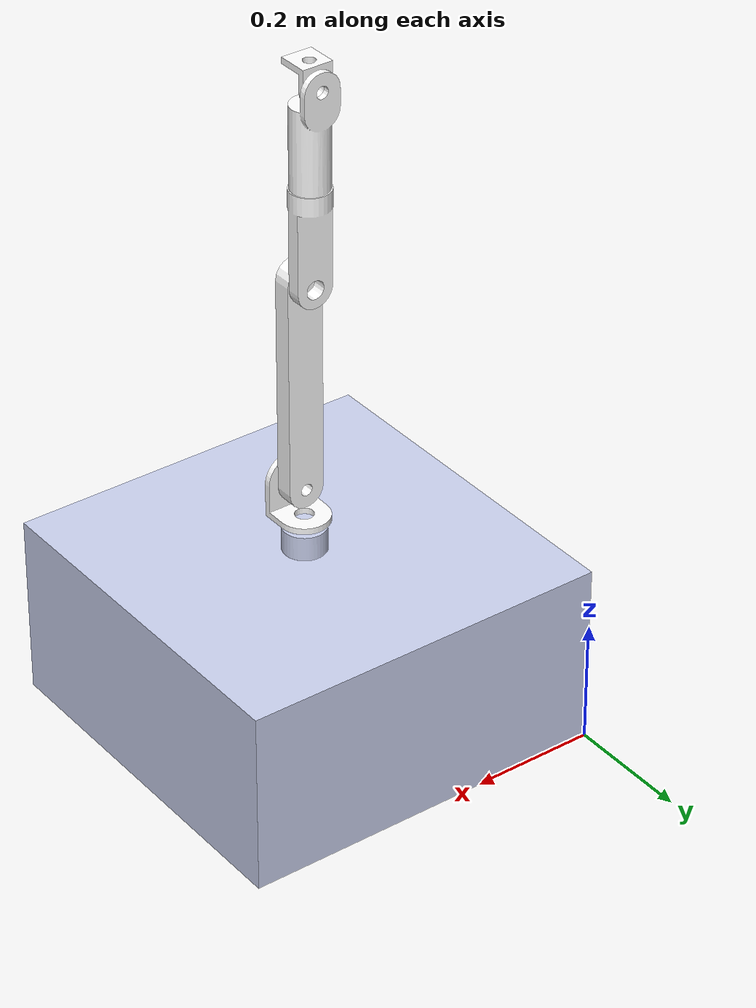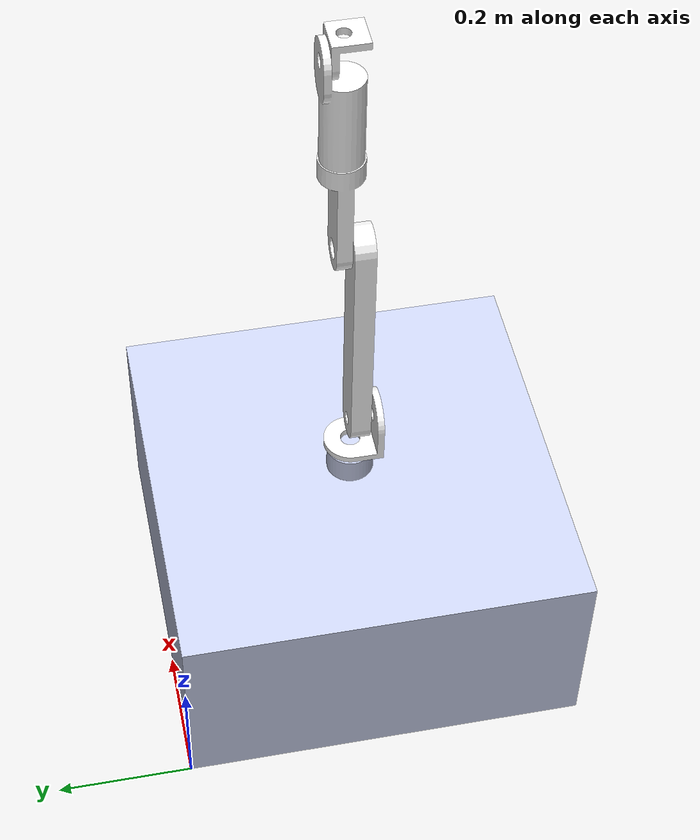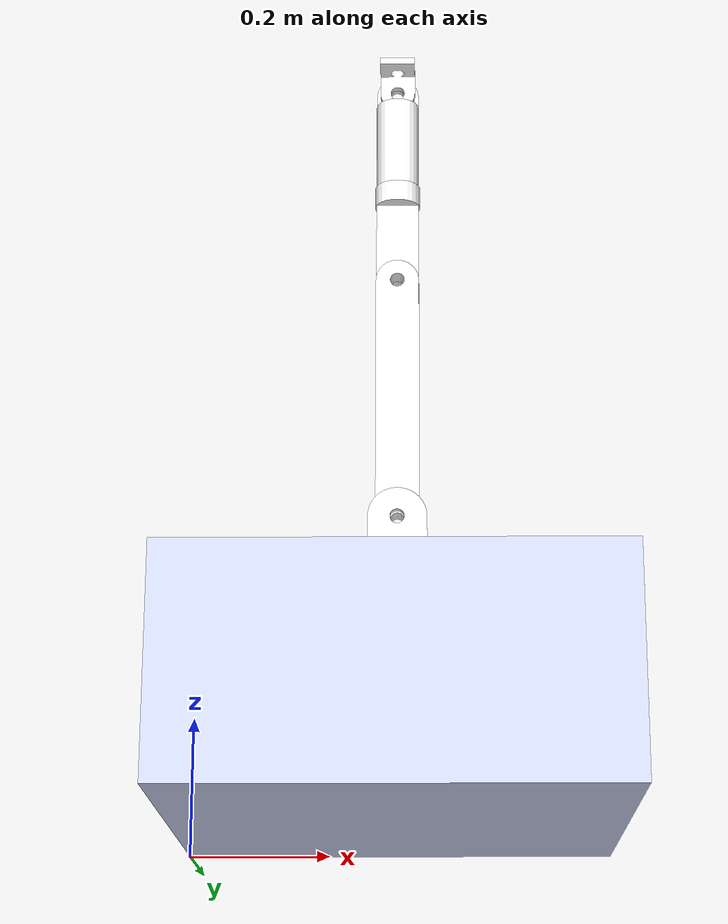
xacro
<?xml version="1.0" encoding="utf-8"?>
<robot xmlns:xacro="http://www.ros.org/wiki/xacro" name="arm">

  <!-- Properties for common parameters -->
  <xacro:property name="joint_effort_limit" value="100" />
  <xacro:property name="joint_velocity_limit" value="100" />
  <xacro:property name="joint_lower_limit" value="-3.14" />
  <xacro:property name="joint_upper_limit" value="3.14" />

  <!-- Base Link -->
  <link name="base_link">
    <inertial>
      <origin xyz="0.3 -0.3 0.150241964992479" rpy="0 0 0" />
      <mass value="108.153938040026" />
      <inertia
        ixx="4.05006766859676"
        ixy="5.96236737040346E-17"
        ixz="-1.98291555702412E-16"
        iyy="4.05006766859676"
        iyz="1.48790520498712E-16"
        izz="6.48009428704952" />
    </inertial>
    <visual>
      <origin xyz="0 0 0" rpy="0 0 0" />
      <geometry>
        <mesh filename="package://arm_description/meshes/base_link.STL" />
      </geometry>
      <material name="">
        <color rgba="0.792156862745098 0.819607843137255 0.933333333333333 1" />
      </material>
    </visual>
    <collision>
      <origin xyz="0 0 0" rpy="0 0 0" />
      <geometry>
        <mesh filename="package://arm_description/meshes/base_link.STL" />
      </geometry>
    </collision>
  </link>

  <!-- Link 1 -->
  <link name="link1">
    <inertial>
      <origin xyz="0.027879900764249 -5.55111512312578E-17 0.0223805358867052" rpy="0 0 0" />
      <mass value="0.10997530633327" />
      <inertia
        ixx="0.000113416478550938"
        ixy="7.68604581237048E-21"
        ixz="-3.77923375022149E-05"
        iyy="0.000140277105028251"
        iyz="-6.74441501657892E-21"
        izz="0.000140702050503476" />
    </inertial>
    <visual>
      <origin xyz="0 0 0" rpy="0 0 0" />
      <geometry>
        <mesh filename="package://arm_description/meshes/link1.STL" />
      </geometry>
      <material name="">
        <color rgba="1 1 1 1" />
      </material>
    </visual>
    <collision>
      <origin xyz="0 0 0" rpy="0 0 0" />
      <geometry>
        <mesh filename="package://arm_description/meshes/link1.STL" />
      </geometry>
    </collision>
  </link>

  <!-- Joint 1 -->
  <joint name="joint1" type="revolute">
    <origin xyz="0.3 -0.3 0.35" rpy="1.5708 -1.5708 0" />
    <parent link="base_link" />
    <child link="link1" />
    <axis xyz="1 0 0" />
    <limit
      lower="${joint_lower_limit}"
      upper="${joint_upper_limit}"
      effort="${joint_effort_limit}"
      velocity="${joint_velocity_limit}" />
  </joint>

  <!-- Link 2 -->
  <link name="link2">
    <inertial>
      <origin xyz="0.175 0.0150000000000001 5.55111512312578E-17" rpy="0 0 0" />
      <mass value="0.695973445725386" />
      <inertia
        ixx="0.000259811944901924"
        ixy="-5.9240876142181E-19"
        ixz="-1.42013607458529E-18"
        iyy="0.00905591464828498"
        iyz="4.68349859133938E-20"
        izz="0.00890049872024186" />
    </inertial>
    <visual>
      <origin xyz="0 0 0" rpy="0 0 0" />
      <geometry>
        <mesh filename="package://arm_description/meshes/link2.STL" />
      </geometry>
      <material name="">
        <color rgba="1 1 1 1" />
      </material>
    </visual>
    <collision>
      <origin xyz="0 0 0" rpy="0 0 0" />
      <geometry>
        <mesh filename="package://arm_description/meshes/link2.STL" />
      </geometry>
    </collision>
  </link>

  <!-- Joint 2 -->
  <joint name="joint2" type="revolute">
    <origin xyz="0.0549999999999999 0 0.0239000000000001" rpy="-1.5707963267949 0 0" />
    <parent link="link1" />
    <child link="link2" />
    <axis xyz="0 1 0" />
    <limit
      lower="${joint_lower_limit}"
      upper="${joint_upper_limit}"
      effort="${joint_effort_limit}"
      velocity="${joint_velocity_limit}" />
  </joint>

  <!-- Link 3 -->
  <link name="link3">
    <inertial>
      <origin xyz="0.011 0.0866621656130951 0" rpy="0 0 0" />
      <mass value="0.282057866614725" />
      <inertia
        ixx="0.00091666723607833"
        ixy="-1.23781996004548E-19"
        ixz="-5.53204332497181E-21"
        iyy="0.000113826214215689"
        iyz="9.52849345211767E-20"
        izz="0.000866955254620232" />
    </inertial>
    <visual>
      <origin xyz="0 0 0" rpy="0 0 0" />
      <geometry>
        <mesh filename="package://arm_description/meshes/link3.STL" />
      </geometry>
      <material name="">
        <color rgba="1 1 1 1" />
      </material>
    </visual>
    <collision>
      <origin xyz="0 0 0" rpy="0 0 0" />
      <geometry>
        <mesh filename="package://arm_description/meshes/link3.STL" />
      </geometry>
    </collision>
  </link>

  <!-- Joint 3 -->
  <joint name="joint3" type="revolute">
    <origin xyz="0.35 0.033 0" rpy="3.1416 0 1.5708" />
    <parent link="link2" />
    <child link="link3" />
    <axis xyz="1 0 0" />
    <limit
      lower="${joint_lower_limit}"
      upper="${joint_upper_limit}"
      effort="${joint_effort_limit}"
      velocity="${joint_velocity_limit}" />
  </joint>

  <!-- Link 4 -->
  <link name="link4">
    <inertial>
      <origin xyz="0.0722067358006824 3.09175477997137E-08 0.00212519424079688" rpy="0 0 0" />
      <mass value="0.401387078802621" />
      <inertia
        ixx="0.000196053620635152"
        ixy="-3.94998604417473E-10"
        ixz="-6.65598685922249E-05"
        iyy="0.000861171635012986"
        iyz="-4.45831496816359E-10"
        izz="0.000851845195995295" />
    </inertial>
    <visual>
      <origin xyz="0 0 0" rpy="0 0 0" />
      <geometry>
        <mesh filename="package://arm_description/meshes/link4.STL" />
      </geometry>
      <material name="">
        <color rgba="1 1 1 1" />
      </material>
    </visual>
    <collision>
      <origin xyz="0 0 0" rpy="0 0 0" />
      <geometry>
        <mesh filename="package://arm_description/meshes/link4.STL" />
      </geometry>
    </collision>
  </link>

  <!-- Joint 4 -->
  <joint name="joint4" type="revolute">
    <origin xyz="0.011 0.159 0" rpy="1.5707963267949 0 1.5707963267949" />
    <parent link="link3" />
    <child link="link4" />
    <axis xyz="-1 0 0" />
    <limit
      lower="${joint_lower_limit}"
      upper="${joint_upper_limit}"
      effort="${joint_effort_limit}"
      velocity="${joint_velocity_limit}" />
  </joint>

  <!-- Link 5 -->
  <link name="link5">
    <inertial>
      <origin xyz="0.0184980485294033 0 0.0157739679081105" rpy="0 0 0" />
      <mass value="0.0420342917352885" />
      <inertia
        ixx="1.91095293507794E-05"
        ixy="2.09484718938033E-21"
        ixz="-6.11471126206109E-06"
        iyy="2.26296969059062E-05"
        iyz="5.93312989901817E-21"
        izz="2.23156365322058E-05" />
    </inertial>
    <visual>
      <origin xyz="0 0 0" rpy="0 0 0" />
      <geometry>
        <mesh filename="package://arm_description/meshes/link5.STL" />
      </geometry>
      <material name="">
        <color rgba="1 1 1 1" />
      </material>
    </visual>
    <collision>
      <origin xyz="0 0 0" rpy="0 0 0" />
      <geometry>
        <mesh filename="package://arm_description/meshes/link5.STL" />
      </geometry>
    </collision>
  </link>

  <!-- Joint 5 -->
  <joint name="joint5" type="revolute">
    <origin xyz="0.158999999999999 0 0.0200000000000001" rpy="3.14159265358979 0 0" />
    <parent link="link4" />
    <child link="link5" />
    <axis xyz="0 0 -1" />
    <limit
      lower="${joint_lower_limit}"
      upper="${joint_upper_limit}"
      effort="${joint_effort_limit}"
      velocity="${joint_velocity_limit}" />
  </joint>

  <!-- Link 6 -->

  <!-- Joint 6 -->

</robot>
